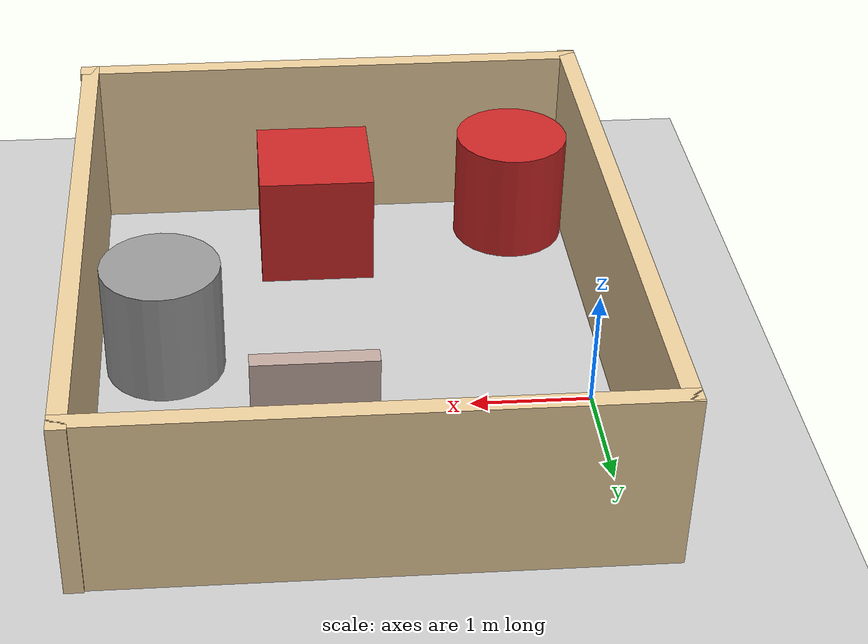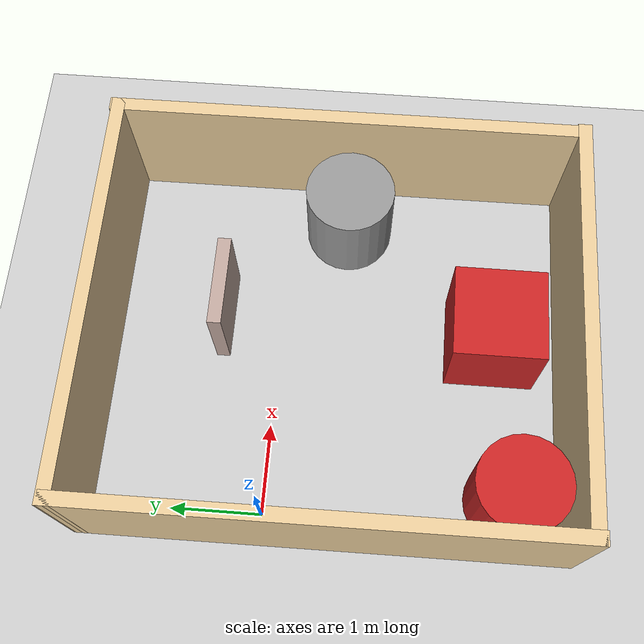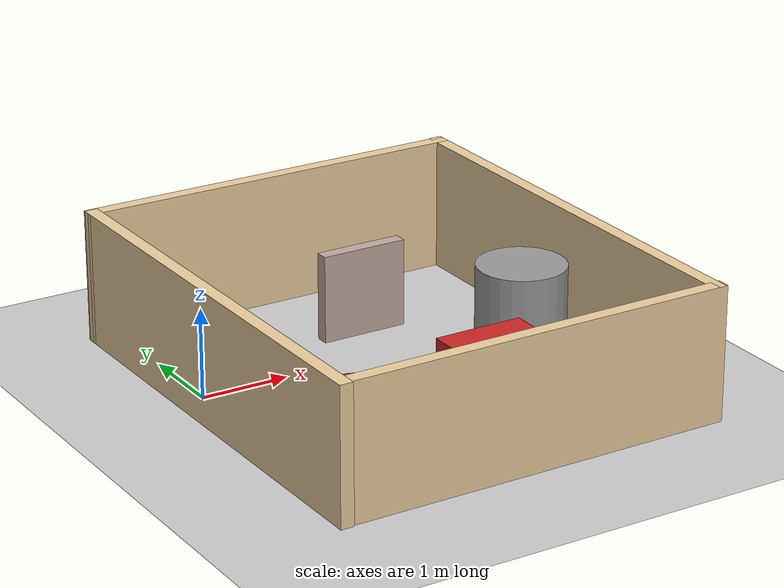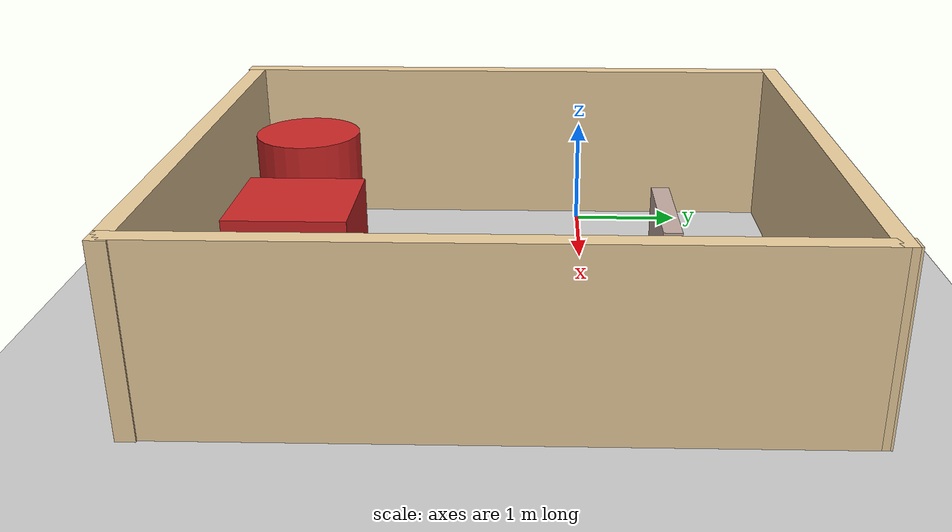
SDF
<sdf version="1.7">
 <world name="small_maze_world">
  <light name="sun" type="directional">
   <pose>0 0 10 0 -0 0</pose>
   <diffuse>0.8 0.8 0.8 1</diffuse>
   <specular>0.1 0.1 0.1 1</specular>
   <attenuation>
    <range>1000</range>
    <constant>0.9</constant>
    <linear>0.01</linear>
    <quadratic>0.001</quadratic>
   </attenuation>
   <direction>-0.5 0.5 -1</direction>
   <spot><inner_angle>0</inner_angle><outer_angle>0</outer_angle><falloff>0</falloff></spot>
  </light>
  <model name="ground_plane">
   <static>1</static>
   <link name="link">
    <collision name="collision">
     <geometry><plane><normal>0 0 1</normal><size>100 100</size></plane></geometry>
     <surface><friction><ode><mu>100</mu><mu2>50</mu2></ode></friction></surface>
    </collision>
    <visual name="visual">
     <cast_shadows>0</cast_shadows>
     <geometry><plane><normal>0 0 1</normal><size>100 100</size></plane></geometry>
     <material>
      <script><uri>file://media/materials/scripts/gazebo.material</uri><name>Gazebo/Grey</name></script>
     </material>
    </visual>
   </link>
  </model>
  <gravity>0 0 -9.8</gravity>
  <magnetic_field>6e-06 2.3e-05 -4.2e-05</magnetic_field>
  <atmosphere type="adiabatic"/>
  <physics name="default_physics" default="0" type="ode">
   <max_step_size>0.001</max_step_size>
   <real_time_factor>1</real_time_factor>
   <real_time_update_rate>1000</real_time_update_rate>
  </physics>
  <scene><ambient>0.4 0.4 0.4 1</ambient><background>0.7 0.7 0.7 1</background><shadows>1</shadows></scene>
  <spherical_coordinates>
   <surface_model>EARTH_WGS84</surface_model>
   <latitude_deg>0</latitude_deg>
   <longitude_deg>0</longitude_deg>
   <elevation>0</elevation>
   <heading_deg>0</heading_deg>
  </spherical_coordinates>
  <plugin name="differential_drive_controller" filename="libgazebo_ros_diff_drive.so">
   <ros><namespace>/td_robot</namespace></ros>
   <update_rate>30.0</update_rate>
   <left_joint>left_wheel_hinge</left_joint>
   <right_joint>right_wheel_hinge</right_joint>
   <wheel_separation>0.34</wheel_separation>
   <wheel_diameter>0.15</wheel_diameter>
   <wheel_torque>10</wheel_torque>
   <wheel_acceleration>1.0</wheel_acceleration>
   <command_topic>cmd_vel</command_topic>
   <odometry_topic>odom</odometry_topic>
   <odometry_frame>odom</odometry_frame>
   <robot_base_frame>base_link</robot_base_frame>
  </plugin>
  <audio><device>default</device></audio>
  <model name="unit_cylinder">
   <pose>3.49541 -0.70583 0.499998 3e-06 -2e-06 -0.000217</pose>
   <link name="link">
    <inertial>
     <mass>1</mass>
     <inertia><ixx>0.145833</ixx><ixy>0</ixy><ixz>0</ixz><iyy>0.145833</iyy><iyz>0</iyz><izz>0.125</izz></inertia>
    </inertial>
    <collision name="collision">
     <geometry><cylinder><radius>0.5</radius><length>1</length></cylinder></geometry>
    </collision>
    <visual name="visual">
     <geometry><cylinder><radius>0.5</radius><length>1</length></cylinder></geometry>
     <material>
      <script><name>Gazebo/Grey</name><uri>file://media/materials/scripts/gazebo.material</uri></script>
     </material>
    </visual>
   </link>
  </model>
  <model name="small_maze_2">
   <pose>1.85987 -0.66286 0 0 -0 0</pose>
   <link name="Wall_16">
    <collision name="Wall_16_Collision">
     <geometry><box><size>5.29645 0.15 1.5</size></box></geometry>
     <pose>0 0 0.75 0 -0 0</pose>
    </collision>
    <visual name="Wall_16_Visual">
     <pose>0 0 0.75 0 -0 0</pose>
     <geometry><box><size>5.29645 0.15 1.5</size></box></geometry>
     <material>
      <script><uri>file://media/materials/scripts/gazebo.material</uri><name>Gazebo/Grey</name></script>
      <ambient>0.921569 0.807843 0.615686 1</ambient>
     </material>
     <meta><layer>0</layer></meta>
    </visual>
    <pose>-2.10853 -0.017589 0 0 -0 1.57421</pose>
   </link>
   <link name="Wall_18">
    <collision name="Wall_18_Collision">
     <geometry><box><size>4.52249 0.15 1.5</size></box></geometry>
     <pose>0 0 0.75 0 -0 0</pose>
    </collision>
    <visual name="Wall_18_Visual">
     <pose>0 0 0.75 0 -0 0</pose>
     <geometry><box><size>4.52249 0.15 1.5</size></box></geometry>
     <material>
      <script><uri>file://media/materials/scripts/gazebo.material</uri><name>Gazebo/Grey</name></script>
      <ambient>0.921569 0.807843 0.615686 1</ambient>
     </material>
     <meta><layer>0</layer></meta>
    </visual>
    <pose>0.068925 2.57321 0 0 -0 0</pose>
   </link>
   <link name="Wall_19">
    <collision name="Wall_19_Collision">
     <geometry><box><size>5.29645 0.15 1.5</size></box></geometry>
     <pose>0 0 0.75 0 -0 0</pose>
    </collision>
    <visual name="Wall_19_Visual">
     <pose>0 0 0.75 0 -0 0</pose>
     <geometry><box><size>5.29645 0.15 1.5</size></box></geometry>
     <material>
      <script><uri>file://media/materials/scripts/gazebo.material</uri><name>Gazebo/Grey</name></script>
      <ambient>0.921569 0.807843 0.615686 1</ambient>
     </material>
     <meta><layer>0</layer></meta>
    </visual>
    <pose>2.26396 0.017589 0 0 -0 -1.56738</pose>
   </link>
   <link name="Wall_20">
    <collision name="Wall_20_Collision">
     <geometry><box><size>4.54012 0.15 1.5</size></box></geometry>
     <pose>0 0 0.75 0 -0 0</pose>
    </collision>
    <visual name="Wall_20_Visual">
     <pose>0 0 0.75 0 -0 0</pose>
     <geometry><box><size>4.54012 0.15 1.5</size></box></geometry>
     <material>
      <script><uri>file://media/materials/scripts/gazebo.material</uri><name>Gazebo/Grey</name></script>
      <ambient>0.921569 0.807843 0.615686 1</ambient>
     </material>
     <meta><layer>0</layer></meta>
    </visual>
    <pose>0.095309 -2.56442 0 0 -0 -3.13759</pose>
   </link>
   <link name="Wall_22">
    <collision name="Wall_22_Collision">
     <geometry><box><size>1 0.15 1</size></box></geometry>
     <pose>0 0 0.5 0 -0 0</pose>
    </collision>
    <visual name="Wall_22_Visual">
     <pose>0 0 0.5 0 -0 0</pose>
     <geometry><box><size>1 0.15 1</size></box></geometry>
     <material>
      <script><uri>file://media/materials/scripts/gazebo.material</uri><name>Gazebo/Grey</name></script>
      <ambient>0.760784 0.662745 0.627451 1</ambient>
     </material>
     <meta><layer>0</layer></meta>
    </visual>
    <pose>0.44035 1.29102 0 0 -0 0</pose>
   </link>
   <static>1</static>
  </model>
  <model name="unit_box">
   <pose>2.14852 -2.4051 0.499995 -1e-05 -0 0</pose>
   <link name="link">
    <inertial>
     <mass>1</mass>
     <inertia>
      <ixx>0.166667</ixx>
      <ixy>0</ixy>
      <ixz>0</ixz>
      <iyy>0.166667</iyy>
      <iyz>0</iyz>
      <izz>0.166667</izz>
     </inertia>
    </inertial>
    <collision name="collision"><geometry><box><size>1 1 1</size></box></geometry></collision>
    <visual name="visual">
     <geometry><box><size>1 1 1</size></box></geometry>
     <material>
      <script><name>Gazebo/Red</name><uri>file://media/materials/scripts/gazebo.material</uri></script>
     </material>
    </visual>
   </link>
  </model>
  <model name="unit_cylinder_0">
   <pose>0.333095 -2.65876 0.499997 -0 1e-06 -7.7e-05</pose>
   <link name="link">
    <inertial>
     <mass>1</mass>
     <inertia><ixx>0.145833</ixx><ixy>0</ixy><ixz>0</ixz><iyy>0.145833</iyy><iyz>0</iyz><izz>0.125</izz></inertia>
    </inertial>
    <collision name="collision">
     <geometry><cylinder><radius>0.5</radius><length>1</length></cylinder></geometry>
    </collision>
    <visual name="visual">
     <geometry><cylinder><radius>0.5</radius><length>1</length></cylinder></geometry>
     <material>
      <script><name>Gazebo/Red</name><uri>file://media/materials/scripts/gazebo.material</uri></script>
     </material>
    </visual>
   </link>
  </model>
 </world>
</sdf>
